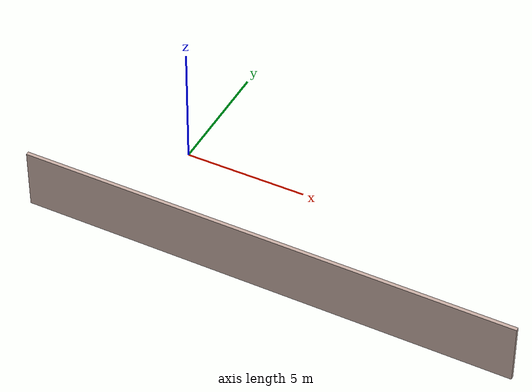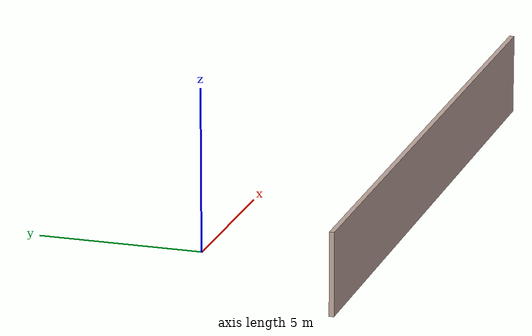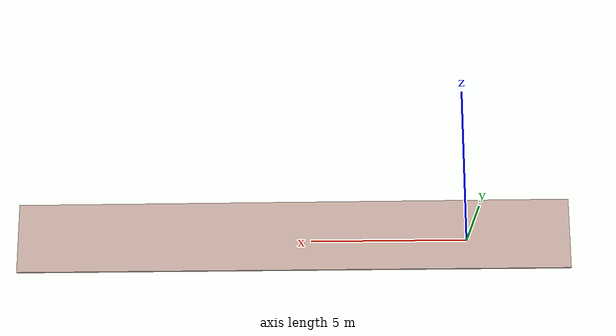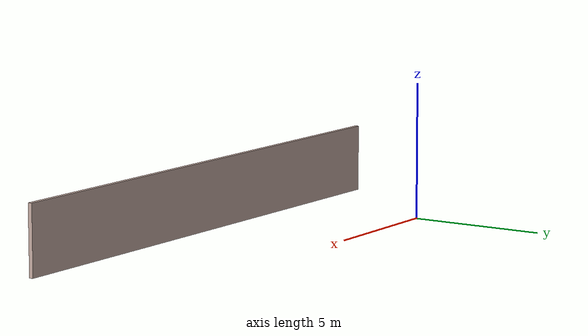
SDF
<?xml version='1.0'?>
<sdf version='1.7'>
  <model name='plain_wall'>
    <pose>5.925 -2.6125 0 0 -0 0</pose>
    <link name='Wall_0'>
      <collision name='Wall_0_Collision'>
        <geometry>
          <box>
            <size>20 0.15 2.5</size>
          </box>
        </geometry>
        <pose>0 0 1.25 0 -0 0</pose>
      </collision>
      <visual name='Wall_0_Visual'>
        <pose>0 0 1.25 0 -0 0</pose>
        <geometry>
          <box>
            <size>20 0.15 2.5</size>
          </box>
        </geometry>
        <material>
          <script>
            <uri>file://media/materials/scripts/gazebo.material</uri>
            <name>Gazebo/Grey</name>
          </script>
          <ambient>0.760784 0.662745 0.627451 1</ambient>
        </material>
        <meta>
          <layer>0</layer>
        </meta>
      </visual>
      <pose>0 -2.5375 0 0 -0 0</pose>
    </link>
    <static>1</static>
  </model>
</sdf>
